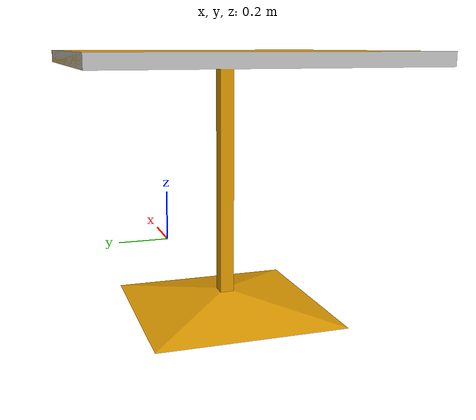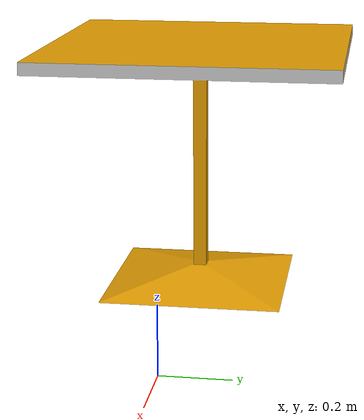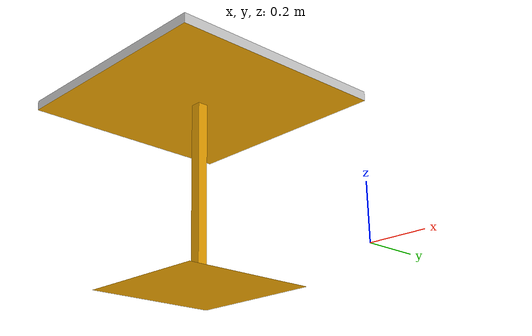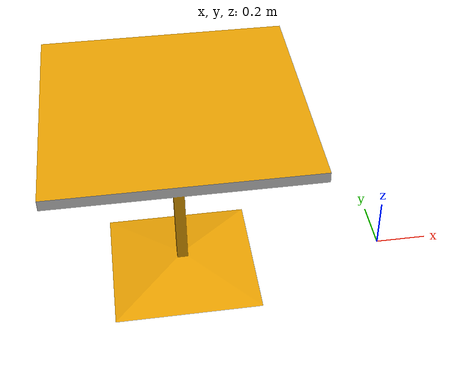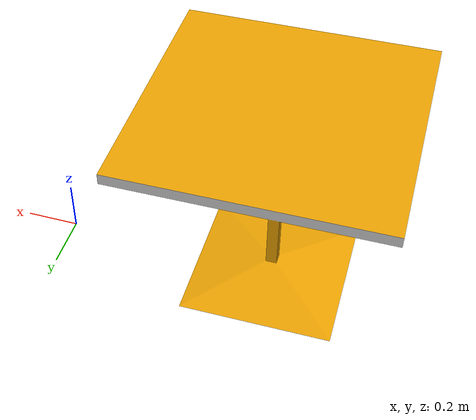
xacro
<?xml version="1.0" ?>
<!-- |    This document was autogenerated by xacro from ur5_joint_limited_robot.urdf.xacro | -->
<!-- |    EDITING THIS FILE BY HAND IS NOT RECOMMENDED                                 | -->

<robot name="table_world">

<link name="tabel">
  <static>true</static>
    <inertial>
      <mass value="0.5"/>
      <inertia  ixx="0.9"  ixy="0"  ixz="0" iyy="0.0" iyz="0" izz="0" />
    </inertial>
    <collision name="collision">
      <origin rpy="0  0 0" xyz="-0.8 0 0"/>
      <geometry>
        <mesh filename= "model://cafe_table/meshes/cafe_table.dae"/>
      </geometry>
      <surface>
        <contact>
          <poissons_ratio>0.305</poissons_ratio>
          <elastic_modulus>2.0e+11</elastic_modulus>
          <ode>
            <kp>100000</kp>
            <kd>1</kd>
            <max_vel>1.0</max_vel>
            <min_depth>0.001</min_depth>
          </ode>
        </contact>
        <friction>
          <torsional>
            <coefficient>1.0</coefficient>
            <use_patch_radius>0</use_patch_radius>
            <surface_radius>0.01</surface_radius>
          </torsional>
        </friction>
      </surface>
    </collision>
    <visual name="visual">
      <origin rpy="0 0 0" xyz="-0.8 0 0 "/>
      <geometry>
        <mesh filename= "model://cafe_table/meshes/cafe_table.dae"/>
      </geometry>
    </visual>
  </link>

  <link name="world"/>

    <joint name ="joint_3" type="fixed">
    <origin xyz="0 0 0 " rpy="0 0 0 "/>
    <parent link="world"/>
    <child link ="tabel"/>
  </joint>

</robot>
